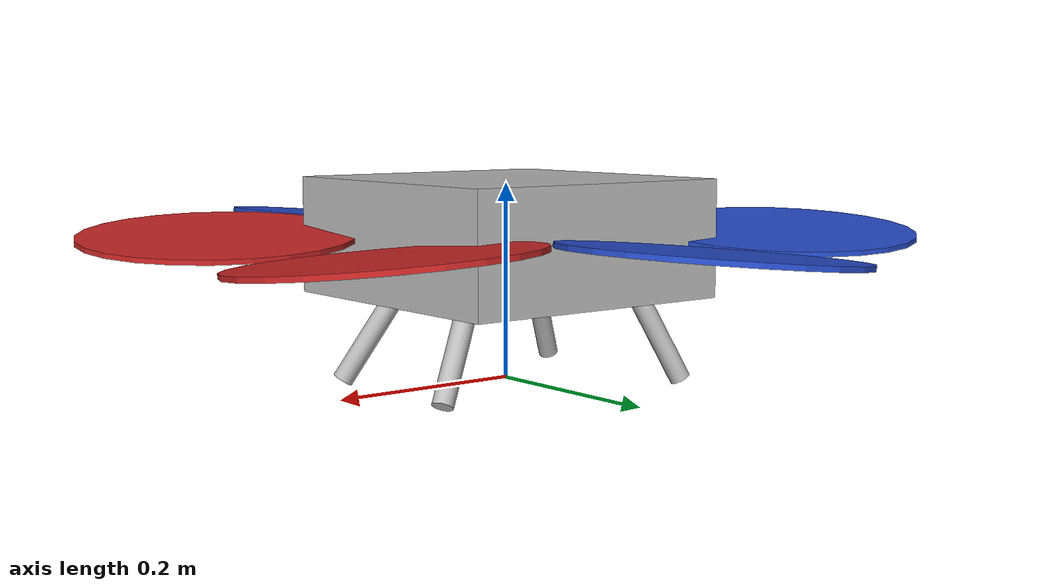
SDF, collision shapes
<?xml version="1.0"?>
<sdf version="1.8">
    <model name="hexrotor">
        <pose>0 0 0.121078 0 0 0</pose>
        <link name="base_link">
            <enable_wind>true</enable_wind>
            <pose>0 0 0 0 -0 0</pose>
            <inertial>
                <pose>0 0 0 0 -0 0</pose>
                <mass>3.42</mass>
                <inertia>
                    <ixx>0.075</ixx>
                    <ixy>0</ixy>
                    <ixz>0</ixz>
                    <iyy>0.075</iyy>
                    <iyz>0</iyz>
                    <izz>0.148916</izz>
                </inertia>
            </inertial>
            <collision name="base_link_inertia_collision">
                <pose>0 0 0.025 0 -0 0</pose>
                <geometry>
                    <box>
                        <size>0.3 0.3 0.12</size>
                    </box>
                </geometry>
            </collision>
            <collision name="leg_0">
                <pose>0.102415 -0.064721 -0.046935 -0.453199 -0.358392 0.452524</pose>
                <geometry>
                    <cylinder>
                        <length>0.173859</length>
                        <radius>0.010630</radius>
                    </cylinder>
                </geometry>
            </collision>
             <collision name="leg_1">
                <pose>0.102415 0.064721 -0.046935 0.453199 -0.358392 -0.452524</pose>
                <geometry>
                    <cylinder>
                        <length>0.173859</length>
                        <radius>0.010630</radius>
                    </cylinder>
                </geometry>
            </collision>
            <collision name="leg_2">
                <pose>-0.110415 0.086683 -0.046935 2.8230806 -0.369254 -2.921386</pose>
                <geometry>
                    <cylinder>
                        <length>0.173859</length>
                        <radius>0.010630</radius>
                    </cylinder>
                </geometry>
            </collision>
             <collision name="leg_3">
                <pose>-0.110415 -0.086683 -0.046935 -2.8230806 -0.369254 2.921386</pose>
                <geometry>
                    <cylinder>
                        <length>0.173859</length>
                        <radius>0.010630</radius>
                    </cylinder>
                </geometry>
            </collision>

            <visual name="base_link_inertia_visual">
                <pose>0 0 0 0 -0 0</pose>
                <geometry>
                    <mesh>
                        <scale>1 1 1</scale>
                        <uri>model://hexrotor_base/meshes/hexrotor.dae</uri>
                    </mesh>
                </geometry>
            </visual>
            <visual name="marker_visual_1">
                <pose>-0.1 0 0.077 0 -0.1 0</pose>
                <geometry>
                    <mesh>
                        <scale>1 1 1</scale>
                        <uri>model://hexrotor_base/meshes/led.dae</uri>
                    </mesh>
                </geometry>
            </visual>
            <visual name="marker_visual_2">
                <pose>-0.09 0.059 0.059 -0.785397 -0 0.2</pose>
                <geometry>
                    <mesh>
                        <scale>1 1 1</scale>
                        <uri>model://hexrotor_base/meshes/led.dae</uri>
                    </mesh>
                </geometry>
            </visual>
            <visual name="marker_visual_3">
                <pose>-0.09 -0.059 0.059 0.785397 -0 -0.2</pose>
                <geometry>
                    <mesh>
                        <scale>1 1 1</scale>
                        <uri>model://hexrotor_base/meshes/led.dae</uri>
                    </mesh>
                </geometry>
            </visual>
        </link>

        <!-- IMU -->
        <link name="imu">
            <inertial>
                <mass>0.005</mass>
                <inertia>
                    <ixx>8.33e-06</ixx>
                    <ixy>0</ixy>
                    <ixz>0</ixz>
                    <iyy>8.33e-06</iyy>
                    <iyz>0</iyz>
                    <izz>8.33e-06</izz>
                </inertia>
            </inertial>
            <sensor name="imu_sensor" type="imu">
                <always_on>1</always_on>
                <update_rate>250</update_rate>
                <imu>
                    <angular_velocity>
                        <x>
                            <noise type="gaussian">
                                <mean>0</mean>
                                <stddev>0.009</stddev>
                                <bias_mean>0.00075</bias_mean>
                                <bias_stddev>0.005</bias_stddev>
                                <dynamic_bias_stddev>0.00002</dynamic_bias_stddev>
                                <dynamic_bias_correlation_time>400.0</dynamic_bias_correlation_time>
                                <precision>0.00025</precision>
                            </noise>
                        </x>
                        <y>
                            <noise type="gaussian">
                                <mean>0</mean>
                                <stddev>0.009</stddev>
                                <bias_mean>0.00075</bias_mean>
                                <bias_stddev>0.005</bias_stddev>
                                <dynamic_bias_stddev>0.00002</dynamic_bias_stddev>
                                <dynamic_bias_correlation_time>400.0</dynamic_bias_correlation_time>
                                <precision>0.00025</precision>
                            </noise>
                        </y>
                        <z>
                            <noise type="gaussian">
                                <mean>0</mean>
                                <stddev>0.009</stddev>
                                <bias_mean>0.00075</bias_mean>
                                <bias_stddev>0.005</bias_stddev>
                                <dynamic_bias_stddev>0.00002</dynamic_bias_stddev>
                                <dynamic_bias_correlation_time>400.0</dynamic_bias_correlation_time>
                                <precision>0.00025</precision>
                            </noise>
                        </z>
                    </angular_velocity>
                    <linear_acceleration>
                        <x>
                            <noise type="gaussian">
                                <mean>0</mean>
                                <stddev>0.021</stddev>
                                <bias_mean>0.05</bias_mean>
                                <bias_stddev>0.0075</bias_stddev>
                                <dynamic_bias_stddev>0.000375</dynamic_bias_stddev>
                                <dynamic_bias_correlation_time>175.0</dynamic_bias_correlation_time>
                                <precision>0.005</precision>
                            </noise>
                        </x>
                        <y>
                            <noise type="gaussian">
                                <mean>0</mean>
                                <stddev>0.021</stddev>
                                <bias_mean>0.05</bias_mean>
                                <bias_stddev>0.0075</bias_stddev>
                                <dynamic_bias_stddev>0.000375</dynamic_bias_stddev>
                                <dynamic_bias_correlation_time>175.0</dynamic_bias_correlation_time>
                                <precision>0.005</precision>
                            </noise>
                        </y>
                        <z>
                            <noise type="gaussian">
                                <mean>0</mean>
                                <stddev>0.021</stddev>
                                <bias_mean>0.05</bias_mean>
                                <bias_stddev>0.0075</bias_stddev>
                                <dynamic_bias_stddev>0.000375</dynamic_bias_stddev>
                                <dynamic_bias_correlation_time>175.0</dynamic_bias_correlation_time>
                                <precision>0.005</precision>
                            </noise>
                        </z>
                    </linear_acceleration>
                </imu>
            </sensor>
        </link>

        <joint name="imu_joint" type="fixed">
            <parent>base_link</parent>
            <child>imu</child>
        </joint>

        <!-- AIR PRESSURE -->
        <link name="air_pressure">
            <inertial>
                <mass>0.005</mass>
                <inertia>
                    <ixx>8.33e-06</ixx>
                    <ixy>0</ixy>
                    <ixz>0</ixz>
                    <iyy>8.33e-06</iyy>
                    <iyz>0</iyz>
                    <izz>8.33e-06</izz>
                </inertia>
            </inertial>
            <sensor name="air_pressure" type="air_pressure">
                <always_on>1</always_on>
                <update_rate>20</update_rate>
                <air_pressure>
                    <reference_altitude>0</reference_altitude>
                    <noise type="gaussian">
                        <mean>0.00000008</mean>
                    </noise>
                </air_pressure>
            </sensor>
        </link>

        <joint name="air_pressure_joint" type="fixed">
            <parent>base_link</parent>
            <child>air_pressure</child>
        </joint>

        <!-- MAGNETOMETER -->
        <link name="magnetometer">
            <inertial>
                <mass>0.005</mass>
                <inertia>
                    <ixx>8.33e-06</ixx>
                    <ixy>0</ixy>
                    <ixz>0</ixz>
                    <iyy>8.33e-06</iyy>
                    <iyz>0</iyz>
                    <izz>8.33e-06</izz>
                </inertia>
            </inertial>
            <sensor name="magnetometer" type="magnetometer">
                <always_on>1</always_on>
                <update_rate>20</update_rate>
                <magnetometer>
                    <x>
                        <noise type="gaussian">
                            <mean>0.000000080</mean>
                            <bias_mean>0.000000400</bias_mean>
                        </noise>
                    </x>
                    <y>
                        <noise type="gaussian">
                            <mean>0.000000080</mean>
                            <bias_mean>0.000000400</bias_mean>
                        </noise>
                    </y>
                    <z>
                        <noise type="gaussian">
                            <mean>0.000000080</mean>
                            <bias_mean>0.000000400</bias_mean>
                        </noise>
                    </z>
                </magnetometer>
            </sensor>
        </link>
        <joint name="magnetometer_joint" type="fixed">
            <parent>base_link</parent>
            <child>magnetometer</child>
        </joint>

        <link name="rotor_0">
            <pose>0.247 0.1506 0.028 0.087267 0 0.523599</pose>
            <inertial>
                <pose>0 0 0 0 -0 0</pose>
                <mass>0.005</mass>
                <inertia>
                    <ixx>9.75e-07</ixx>
                    <ixy>0</ixy>
                    <ixz>0</ixz>
                    <iyy>8.13545e-05</iyy>
                    <iyz>0</iyz>
                    <izz>8.22545e-05</izz>
                </inertia>
            </inertial>
            <collision name="rotor_0_collision">
                <pose>0 0 0 0 -0 0</pose>
                <geometry>
                    <cylinder>
                        <length>0.005</length>
                        <radius>0.1397</radius>
                    </cylinder>
                </geometry>
                <surface>
                    <contact>
                        <ode/>
                    </contact>
                    <friction>
                        <ode/>
                    </friction>
                </surface>
            </collision>
            <visual name="rotor_0_visual">
                <pose>0 0 0 0 -0 0</pose>
                <geometry>
                    <mesh>
                        <scale>1 1 1</scale>
                        <uri>model://hexrotor_base/meshes/neo11_propeller_ccw.dae</uri>
                    </mesh>
                </geometry>
                <material>
                    <diffuse>1 0 0 1</diffuse>
                    <script>
                        <name>Gazebo/Red</name>
                        <uri>file://media/materials/scripts/gazebo.material</uri>
                    </script>
                </material>
                <cast_shadows>0</cast_shadows>
            </visual>
            <gravity>1</gravity>
            <velocity_decay/>
        </link>
        <joint name="rotor_0_joint" type="revolute">
            <child>rotor_0</child>
            <parent>base_link</parent>
            <axis>
                <xyz>0 0 1</xyz>
                <limit>
                    <lower>-1e+16</lower>
                    <upper>1e+16</upper>
                </limit>
                <dynamics>
                    <spring_reference>0</spring_reference>
                    <spring_stiffness>0</spring_stiffness>
                </dynamics>
            </axis>
        </joint>
        <link name="rotor_1">
            <pose>-0.00067 0.28929 0.028 0 -0.087267 0</pose>
            <inertial>
                <pose>0 0 0 0 -0 0</pose>
                <mass>0.005</mass>
                <inertia>
                    <ixx>9.75e-07</ixx>
                    <ixy>0</ixy>
                    <ixz>0</ixz>
                    <iyy>8.13545e-05</iyy>
                    <iyz>0</iyz>
                    <izz>8.22545e-05</izz>
                </inertia>
            </inertial>
            <collision name="rotor_1_collision">
                <pose>0 0 0 0 -0 0</pose>
                <geometry>
                    <cylinder>
                        <length>0.005</length>
                        <radius>0.1397</radius>
                    </cylinder>
                </geometry>
                <surface>
                    <contact>
                        <ode/>
                    </contact>
                    <friction>
                        <ode/>
                    </friction>
                </surface>
            </collision>
            <visual name="rotor_1_visual">
                <pose>0 0 0 0 -0 0</pose>
                <geometry>
                    <mesh>
                        <scale>1 1 1</scale>
                        <uri>model://hexrotor_base/meshes/neo11_propeller_cw.dae</uri>
                    </mesh>
                </geometry>
                <material>
                    <diffuse>0 0 1 1</diffuse>
                    <script>
                        <name>Gazebo/Blue</name>
                        <uri>file://media/materials/scripts/gazebo.material</uri>
                    </script>
                </material>
                <cast_shadows>0</cast_shadows>
            </visual>
            <gravity>1</gravity>
            <velocity_decay/>
        </link>
        <joint name="rotor_1_joint" type="revolute">
            <child>rotor_1</child>
            <parent>base_link</parent>
            <axis>
                <xyz>0 0 1</xyz>
                <limit>
                    <lower>-1e+16</lower>
                    <upper>1e+16</upper>
                </limit>
                <dynamics>
                    <spring_reference>0</spring_reference>
                    <spring_stiffness>0</spring_stiffness>
                </dynamics>
            </axis>
        </joint>
        <link name="rotor_2">
            <pose>-0.2501 0.1454 0.028 0.087267 -0 2.61799</pose>
            <inertial>
                <pose>0 0 0 0 -0 0</pose>
                <mass>0.005</mass>
                <inertia>
                    <ixx>9.75e-07</ixx>
                    <ixy>0</ixy>
                    <ixz>0</ixz>
                    <iyy>8.13545e-05</iyy>
                    <iyz>0</iyz>
                    <izz>8.22545e-05</izz>
                </inertia>
            </inertial>
            <collision name="rotor_2_collision">
                <pose>0 0 0 0 -0 0</pose>
                <geometry>
                    <cylinder>
                        <length>0.005</length>
                        <radius>0.1397</radius>
                    </cylinder>
                </geometry>
                <surface>
                    <contact>
                        <ode/>
                    </contact>
                    <friction>
                        <ode/>
                    </friction>
                </surface>
            </collision>
            <visual name="rotor_2_visual">
                <pose>0 0 0 0 -0 0</pose>
                <geometry>
                    <mesh>
                        <scale>1 1 1</scale>
                        <uri>model://hexrotor_base/meshes/neo11_propeller_ccw.dae</uri>
                    </mesh>
                </geometry>
                <material>
                    <diffuse>0 0 1 1</diffuse>
                    <script>
                        <name>Gazebo/Blue</name>
                        <uri>file://media/materials/scripts/gazebo.material</uri>
                    </script>
                </material>
                <cast_shadows>0</cast_shadows>
            </visual>
            <gravity>1</gravity>
            <velocity_decay/>
        </link>
        <joint name="rotor_2_joint" type="revolute">
            <child>rotor_2</child>
            <parent>base_link</parent>
            <axis>
                <xyz>0 0 1</xyz>
                <limit>
                    <lower>-1e+16</lower>
                    <upper>1e+16</upper>
                </limit>
                <dynamics>
                    <spring_reference>0</spring_reference>
                    <spring_stiffness>0</spring_stiffness>
                </dynamics>
            </axis>
        </joint>
        <link name="rotor_3">
            <pose>-0.2501 -0.1454 0.028 -0.087267 -0 -2.61799</pose>
            <inertial>
                <pose>0 0 0 0 -0 0</pose>
                <mass>0.005</mass>
                <inertia>
                    <ixx>9.75e-07</ixx>
                    <ixy>0</ixy>
                    <ixz>0</ixz>
                    <iyy>8.13545e-05</iyy>
                    <iyz>0</iyz>
                    <izz>8.22545e-05</izz>
                </inertia>
            </inertial>
            <collision name="rotor_3_collision">
                <pose>0 0 0 0 -0 0</pose>
                <geometry>
                    <cylinder>
                        <length>0.005</length>
                        <radius>0.1397</radius>
                    </cylinder>
                </geometry>
                <surface>
                    <contact>
                        <ode/>
                    </contact>
                    <friction>
                        <ode/>
                    </friction>
                </surface>
            </collision>
            <visual name="rotor_3_visual">
                <pose>0 0 0 0 -0 0</pose>
                <geometry>
                    <mesh>
                        <scale>1 1 1</scale>
                        <uri>model://hexrotor_base/meshes/neo11_propeller_cw.dae</uri>
                    </mesh>
                </geometry>
                <material>
                    <diffuse>0 0 1 1</diffuse>
                    <script>
                        <name>Gazebo/Blue</name>
                        <uri>file://media/materials/scripts/gazebo.material</uri>
                    </script>
                </material>
                <cast_shadows>0</cast_shadows>
            </visual>
            <gravity>1</gravity>
            <velocity_decay/>
        </link>
        <joint name="rotor_3_joint" type="revolute">
            <child>rotor_3</child>
            <parent>base_link</parent>
            <axis>
                <xyz>0 0 1</xyz>
                <limit>
                    <lower>-1e+16</lower>
                    <upper>1e+16</upper>
                </limit>
                <dynamics>
                    <spring_reference>0</spring_reference>
                    <spring_stiffness>0</spring_stiffness>
                </dynamics>
            </axis>
        </joint>
        <link name="rotor_4">
            <pose>-0.00067 -0.28929 0.028 -0 0.087267 -3.14159</pose>
            <inertial>
                <pose>0 0 0 0 -0 0</pose>
                <mass>0.005</mass>
                <inertia>
                    <ixx>9.75e-07</ixx>
                    <ixy>0</ixy>
                    <ixz>0</ixz>
                    <iyy>8.13545e-05</iyy>
                    <iyz>0</iyz>
                    <izz>8.22545e-05</izz>
                </inertia>
            </inertial>
            <collision name="rotor_4_collision">
                <pose>0 0 0 0 -0 0</pose>
                <geometry>
                    <cylinder>
                        <length>0.005</length>
                        <radius>0.1397</radius>
                    </cylinder>
                </geometry>
                <surface>
                    <contact>
                        <ode/>
                    </contact>
                    <friction>
                        <ode/>
                    </friction>
                </surface>
            </collision>
            <visual name="rotor_4_visual">
                <pose>0 0 0 0 -0 0</pose>
                <geometry>
                    <mesh>
                        <scale>1 1 1</scale>
                        <uri>model://hexrotor_base/meshes/neo11_propeller_ccw.dae</uri>
                    </mesh>
                </geometry>
                <material>
                    <diffuse>0 0 1 1</diffuse>
                    <script>
                        <name>Gazebo/Blue</name>
                        <uri>file://media/materials/scripts/gazebo.material</uri>
                    </script>
                </material>
                <cast_shadows>0</cast_shadows>
            </visual>
            <gravity>1</gravity>
            <velocity_decay/>
        </link>
        <joint name="rotor_4_joint" type="revolute">
            <child>rotor_4</child>
            <parent>base_link</parent>
            <axis>
                <xyz>0 0 1</xyz>
                <limit>
                    <lower>-1e+16</lower>
                    <upper>1e+16</upper>
                </limit>
                <dynamics>
                    <spring_reference>0</spring_reference>
                    <spring_stiffness>0</spring_stiffness>
                </dynamics>
            </axis>
        </joint>
        <link name="rotor_5">
            <pose>0.247 -0.1506 0.028 -0.087267 0 -0.523599</pose>
            <inertial>
                <pose>0 0 0 0 -0 0</pose>
                <mass>0.005</mass>
                <inertia>
                    <ixx>9.75e-07</ixx>
                    <ixy>0</ixy>
                    <ixz>0</ixz>
                    <iyy>8.13545e-05</iyy>
                    <iyz>0</iyz>
                    <izz>8.22545e-05</izz>
                </inertia>
            </inertial>
            <collision name="rotor_5_collision">
                <pose>0 0 0 0 -0 0</pose>
                <geometry>
                    <cylinder>
                        <length>0.005</length>
                        <radius>0.1397</radius>
                    </cylinder>
                </geometry>
                <surface>
                    <contact>
                        <ode/>
                    </contact>
                    <friction>
                        <ode/>
                    </friction>
                </surface>
            </collision>
            <visual name="rotor_5_visual">
                <pose>0 0 0 0 -0 0</pose>
                <geometry>
                    <mesh>
                        <scale>1 1 1</scale>
                        <uri>model://hexrotor_base/meshes/neo11_propeller_cw.dae</uri>
                    </mesh>
                </geometry>
                <material>
                    <diffuse>1 0 0 1</diffuse>
                    <script>
                        <name>Gazebo/Red</name>
                        <uri>file://media/materials/scripts/gazebo.material</uri>
                    </script>
                </material>
                <cast_shadows>0</cast_shadows>
            </visual>
            <gravity>1</gravity>
            <velocity_decay/>
        </link>
        <joint name="rotor_5_joint" type="revolute">
            <child>rotor_5</child>
            <parent>base_link</parent>
            <axis>
                <xyz>0 0 1</xyz>
                <limit>
                    <lower>-1e+16</lower>
                    <upper>1e+16</upper>
                </limit>
                <dynamics>
                    <spring_reference>0</spring_reference>
                    <spring_stiffness>0</spring_stiffness>
                </dynamics>
            </axis>
        </joint>

    </model>
</sdf>
